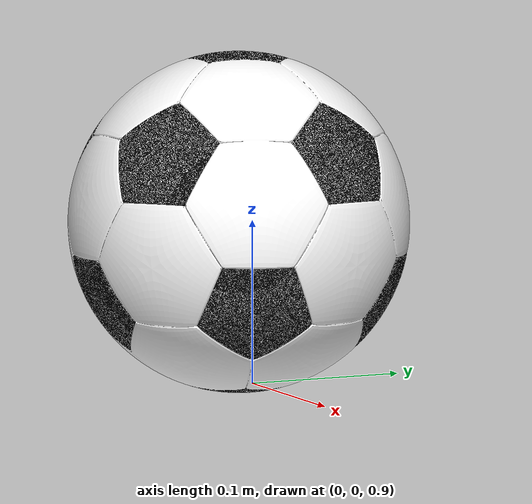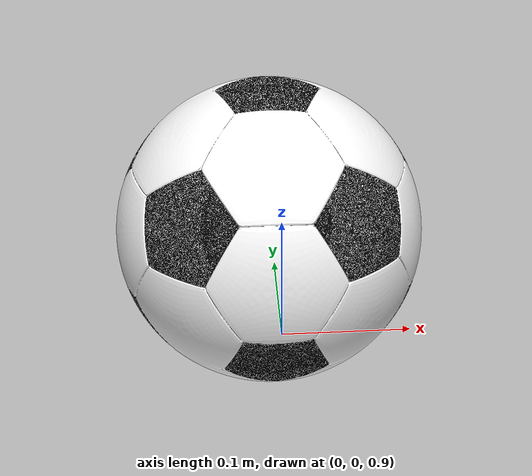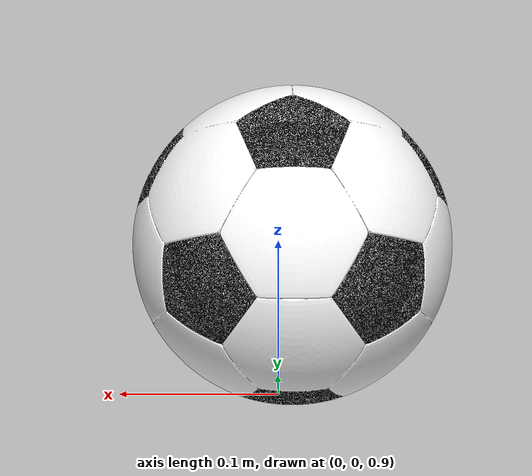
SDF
<!--NOTE: Inertias are copied from tennis_ball model, results aren't optimal -->

<?xml version='1.0'?>
<sdf version="1.5">
  <model name="soccer_ball">
    <static>false</static>

    <link name="ball">
      <pose>0 0 1 0 0 0</pose>

      <collision name="collision">
        <geometry>
            <mesh>
                <uri>model://soccer_ball/soccer_ball.dae</uri>
                <scale>0.01 0.01 0.01</scale>
            </mesh>
        </geometry>
        <surface>
            <bounce>
              <restitution_coefficient>0.725</restitution_coefficient>
              <threshold>0</threshold>
            </bounce>
            <contact>
              <ode>
                <max_vel>10</max_vel>
              </ode>
            </contact>
          </surface>
      </collision>

      <visual name="visual">
        <geometry>
            <mesh>
                <uri>model://soccer_ball/soccer_ball.dae</uri>
                <scale>0.01 0.01 0.01</scale>
            </mesh>
        </geometry>
      </visual>

      <inertial>
        <mass>0.055</mass>
        <inertia>
          <ixx>5.195272</ixx>
          <ixy>0</ixy>
          <ixz>0</ixz>
          <iyy>5.156815</iyy>
          <iyz>0</iyz>
          <izz>5.156814</izz>
        </inertia>
      </inertial>

    </link>
  </model>
</sdf>
